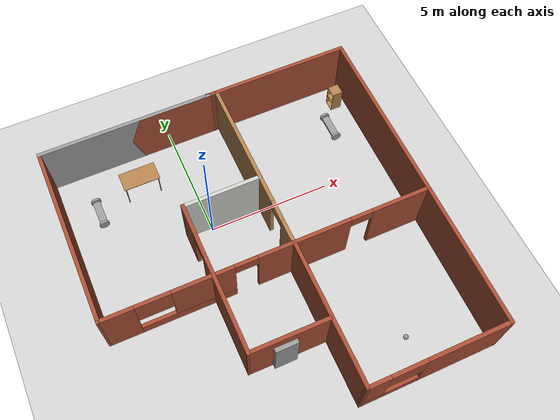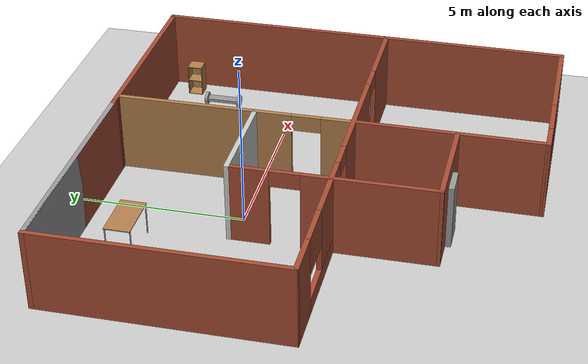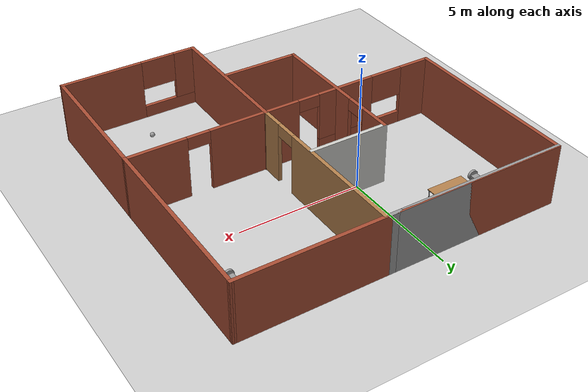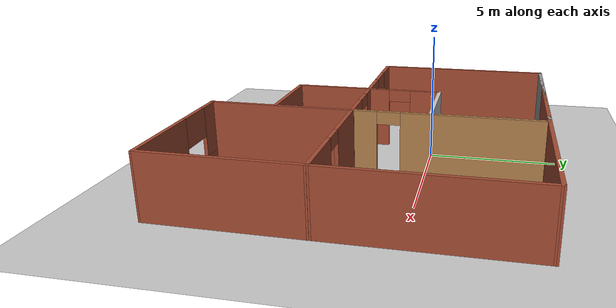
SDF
<sdf version="1.6">
 <world name="default">
  <plugin name="hello" filename="libhello.so"/>
  <light name="sun" type="directional">
   <pose>0 0 10 0 -0 0</pose>
   <diffuse>0.8 0.8 0.8 1</diffuse>
   <specular>0.2 0.2 0.2 1</specular>
   <attenuation>
    <range>1000</range>
    <constant>0.9</constant>
    <linear>0.01</linear>
    <quadratic>0.001</quadratic>
   </attenuation>
   <direction>-0.5 0.1 -0.9</direction>
  </light>
  <model name="ground_plane">
   <static>1</static>
   <link name="link">
    <collision name="collision">
     <geometry><plane><normal>0 0 1</normal><size>100 100</size></plane></geometry>
     <surface><friction><ode><mu>100</mu><mu2>50</mu2></ode></friction></surface>
    </collision>
    <visual name="visual">
     <cast_shadows>0</cast_shadows>
     <geometry><plane><normal>0 0 1</normal><size>100 100</size></plane></geometry>
     <material>
      <script><uri>file://media/materials/scripts/gazebo.material</uri><name>Gazebo/Grey</name></script>
     </material>
    </visual>
   </link>
  </model>
  <gravity>0 0 -9.8</gravity>
  <magnetic_field>6e-06 2.3e-05 -4.2e-05</magnetic_field>
  <atmosphere type="adiabatic"/>
  <physics name="default_physics" default="0" type="ode">
   <max_step_size>0.001</max_step_size>
   <real_time_factor>1</real_time_factor>
   <real_time_update_rate>1000</real_time_update_rate>
  </physics>
  <scene><ambient>0.4 0.4 0.4 1</ambient><background>0.7 0.7 0.7 1</background><shadows>1</shadows></scene>
  <spherical_coordinates>
   <surface_model>EARTH_WGS84</surface_model>
   <latitude_deg>0</latitude_deg>
   <longitude_deg>0</longitude_deg>
   <elevation>0</elevation>
   <heading_deg>0</heading_deg>
  </spherical_coordinates>
  <model name="Building">
   <pose>1.27364 -2.0395 0 0 -0 0</pose>
   <link name="Door_0">
    <collision name="Door_0_Collision">
     <geometry><box><size>0.9 0.17 2</size></box></geometry>
     <pose>0 0 1 0 -0 0</pose>
    </collision>
    <visual name="Door_0_Visual">
     <pose>0 0 1 0 -0 0</pose>
     <geometry><box><size>0.9 0.17 2</size></box></geometry>
     <material>
      <script><uri>file://media/materials/scripts/gazebo.material</uri><name>Gazebo/Grey</name></script>
     </material>
    </visual>
    <pose>-0.878034 -4.05359 0 0 -0 0</pose>
   </link>
   <link name="Wall_27">
    <collision name="Wall_27_Collision">
     <geometry><box><size>7 0.15 2.5</size></box></geometry>
     <pose>0 0 1.25 0 -0 0</pose>
    </collision>
    <visual name="Wall_27_Visual">
     <pose>0 0 1.25 0 -0 0</pose>
     <geometry><box><size>7 0.15 2.5</size></box></geometry>
     <material>
      <script><uri>file://media/materials/scripts/gazebo.material</uri><name>Gazebo/Grey</name></script>
      <ambient>1 1 1 1</ambient>
     </material>
     <meta><layer>0</layer></meta>
    </visual>
    <pose>-3.09504 6.54451 0 0 -0 0</pose>
   </link>
   <link name="Wall_28">
    <collision name="Wall_28_Collision">
     <geometry><box><size>0.5 0.15 2.5</size></box></geometry>
     <pose>0 0 1.25 0 -0 0</pose>
    </collision>
    <visual name="Wall_28_Visual">
     <pose>0 0 1.25 0 -0 0</pose>
     <geometry><box><size>0.5 0.15 2.5</size></box></geometry>
     <material>
      <script><uri>file://media/materials/scripts/gazebo.material</uri><name>Gazebo/Grey</name></script>
      <ambient>1 1 1 1</ambient>
     </material>
     <meta><layer>0</layer></meta>
    </visual>
    <pose>0.504955 6.54451 0 0 -0 0</pose>
   </link>
   <link name="Wall_29">
    <collision name="Wall_29_Collision">
     <geometry><box><size>7.35 0.15 2.5</size></box></geometry>
     <pose>0 0 1.25 0 -0 0</pose>
    </collision>
    <visual name="Wall_29_Visual">
     <pose>0 0 1.25 0 -0 0</pose>
     <geometry><box><size>7.35 0.15 2.5</size></box></geometry>
     <material>
      <script><uri>file://media/materials/scripts/gazebo.material</uri><name>Gazebo/Bricks</name></script>
      <ambient>0.435294 0.796078 0.67451 1</ambient>
     </material>
     <meta><layer>0</layer></meta>
    </visual>
    <pose>-2.92005 6.54451 0 0 -0 3.14159</pose>
   </link>
   <link name="Wall_30">
    <collision name="Wall_30_Collision">
     <geometry><box><size>7.5 0.15 2.5</size></box></geometry>
     <pose>0 0 1.25 0 -0 0</pose>
    </collision>
    <visual name="Wall_30_Visual">
     <pose>0 0 1.25 0 -0 0</pose>
     <geometry><box><size>7.5 0.15 2.5</size></box></geometry>
     <material>
      <script><uri>file://media/materials/scripts/gazebo.material</uri><name>Gazebo/Bricks</name></script>
      <ambient>0.996078 0.47451 0.0196078 1</ambient>
     </material>
     <meta><layer>0</layer></meta>
    </visual>
    <pose>-6.52004 2.86951 0 0 0 -1.5708</pose>
   </link>
   <link name="Wall_31">
    <pose>-0.0156 -0.807041 0 0 0 -0.000239</pose>
    <visual name="Wall_31_Visual_0">
     <pose>-5.89513 0 1.25 0 -0 0</pose>
     <geometry><box><size>1.36863 0.15 2.5</size></box></geometry>
     <material>
      <script><uri>file://media/materials/scripts/gazebo.material</uri><name>Gazebo/Bricks</name></script>
      <ambient>0 0 1 1</ambient>
     </material>
     <meta><layer>0</layer></meta>
    </visual>
    <collision name="Wall_31_Collision_0">
     <geometry><box><size>1.36863 0.15 2.5</size></box></geometry>
     <pose>-5.89513 0 1.25 0 -0 0</pose>
    </collision>
    <visual name="Wall_31_Visual_1">
     <pose>1.36316 0 1.25 0 -0 0</pose>
     <geometry><box><size>3.74468 0.15 2.5</size></box></geometry>
     <material>
      <script><uri>file://media/materials/scripts/gazebo.material</uri><name>Gazebo/Bricks</name></script>
      <ambient>0 0 1 1</ambient>
     </material>
     <meta><layer>0</layer></meta>
    </visual>
    <collision name="Wall_31_Collision_1">
     <geometry><box><size>3.74468 0.15 2.5</size></box></geometry>
     <pose>1.36316 0 1.25 0 -0 0</pose>
    </collision>
    <visual name="Wall_31_Visual_2">
     <pose>5.35747 0 1.25 0 -0 0</pose>
     <geometry><box><size>2.44394 0.15 2.5</size></box></geometry>
     <material>
      <script><uri>file://media/materials/scripts/gazebo.material</uri><name>Gazebo/Bricks</name></script>
      <ambient>0 0 1 1</ambient>
     </material>
     <meta><layer>0</layer></meta>
    </visual>
    <collision name="Wall_31_Collision_2">
     <geometry><box><size>2.44394 0.15 2.5</size></box></geometry>
     <pose>5.35747 0 1.25 0 -0 0</pose>
    </collision>
    <visual name="Wall_31_Visual_3">
     <pose>-3.31 0 0.25 0 -0 0</pose>
     <geometry><box><size>3.80163 0.15 0.5</size></box></geometry>
     <material>
      <script><uri>file://media/materials/scripts/gazebo.material</uri><name>Gazebo/Bricks</name></script>
      <ambient>0 0 1 1</ambient>
     </material>
     <meta><layer>0</layer></meta>
    </visual>
    <collision name="Wall_31_Collision_3">
     <geometry><box><size>3.80163 0.15 0.5</size></box></geometry>
     <pose>-3.31 0 0.25 0 -0 0</pose>
    </collision>
    <visual name="Wall_31_Visual_4">
     <pose>-2.62505 0 1.5 0 -0 0</pose>
     <geometry><box><size>2.43174 0.15 2</size></box></geometry>
     <material>
      <script><uri>file://media/materials/scripts/gazebo.material</uri><name>Gazebo/Bricks</name></script>
      <ambient>0 0 1 1</ambient>
     </material>
     <meta><layer>0</layer></meta>
    </visual>
    <collision name="Wall_31_Collision_4">
     <geometry><box><size>2.43174 0.15 2</size></box></geometry>
     <pose>-2.62505 0 1.5 0 -0 0</pose>
    </collision>
    <visual name="Wall_31_Visual_5">
     <pose>-4.52587 0 1.9 0 -0 0</pose>
     <geometry><box><size>1.36989 0.15 1.2</size></box></geometry>
     <material>
      <script><uri>file://media/materials/scripts/gazebo.material</uri><name>Gazebo/Bricks</name></script>
      <ambient>0 0 1 1</ambient>
     </material>
     <meta><layer>0</layer></meta>
    </visual>
    <collision name="Wall_31_Collision_5">
     <geometry><box><size>1.36989 0.15 1.2</size></box></geometry>
     <pose>-4.52587 0 1.9 0 -0 0</pose>
    </collision>
    <visual name="Wall_31_Visual_6">
     <pose>3.6855 0 2.25 0 -0 0</pose>
     <geometry><box><size>0.9 0.15 0.5</size></box></geometry>
     <material>
      <script><uri>file://media/materials/scripts/gazebo.material</uri><name>Gazebo/Bricks</name></script>
      <ambient>0 0 1 1</ambient>
     </material>
     <meta><layer>0</layer></meta>
    </visual>
    <collision name="Wall_31_Collision_6">
     <geometry><box><size>0.9 0.15 0.5</size></box></geometry>
     <pose>3.6855 0 2.25 0 -0 0</pose>
    </collision>
    <visual name="Wall_31_Visual_7">
     <pose>-0.95918 0 2.25 0 -0 0</pose>
     <geometry><box><size>0.9 0.15 0.5</size></box></geometry>
     <material>
      <script><uri>file://media/materials/scripts/gazebo.material</uri><name>Gazebo/Bricks</name></script>
      <ambient>0 0 1 1</ambient>
     </material>
     <meta><layer>0</layer></meta>
    </visual>
    <collision name="Wall_31_Collision_7">
     <geometry><box><size>0.9 0.15 0.5</size></box></geometry>
     <pose>-0.95918 0 2.25 0 -0 0</pose>
    </collision>
   </link>
   <link name="Wall_36">
    <collision name="Wall_36_Collision">
     <geometry><box><size>7.51446 0.15 2.5</size></box></geometry>
     <pose>0 0 1.25 0 -0 0</pose>
    </collision>
    <visual name="Wall_36_Visual">
     <pose>0 0 1.25 0 -0 0</pose>
     <geometry><box><size>7.51446 0.15 2.5</size></box></geometry>
     <material>
      <script><uri>file://media/materials/scripts/gazebo.material</uri><name>Gazebo/Bricks</name></script>
      <ambient>1 1 1 1</ambient>
     </material>
     <meta><layer>0</layer></meta>
    </visual>
    <pose>6.5043 2.8736 0 0 -0 1.5666</pose>
   </link>
   <link name="Wall_37">
    <collision name="Wall_37_Collision">
     <geometry><box><size>5.9898 0.15 2.5</size></box></geometry>
     <pose>0 0 1.25 0 -0 0</pose>
    </collision>
    <visual name="Wall_37_Visual">
     <pose>0 0 1.25 0 -0 0</pose>
     <geometry><box><size>5.9898 0.15 2.5</size></box></geometry>
     <material>
      <script><uri>file://media/materials/scripts/gazebo.material</uri><name>Gazebo/Bricks</name></script>
      <ambient>1 1 1 1</ambient>
     </material>
     <meta><layer>0</layer></meta>
    </visual>
    <pose>3.59985 6.55016 0 0 0 -3.13966</pose>
   </link>
   <link name="Wall_39">
    <pose>0.888656 2.90862 0 0 -0 1.57305</pose>
    <visual name="Wall_39_Visual_0">
     <pose>-3.19553 0 1.25 0 -0 0</pose>
     <geometry><box><size>0.919616 0.15 2.5</size></box></geometry>
     <material>
      <script><uri>file://media/materials/scripts/gazebo.material</uri><name>Gazebo/Wood</name></script>
      <ambient>1 1 1 1</ambient>
     </material>
     <meta><layer>0</layer></meta>
    </visual>
    <collision name="Wall_39_Collision_0">
     <geometry><box><size>0.919616 0.15 2.5</size></box></geometry>
     <pose>-3.19553 0 1.25 0 -0 0</pose>
    </collision>
    <visual name="Wall_39_Visual_1">
     <pose>0.909808 0 1.25 0 -0 0</pose>
     <geometry><box><size>5.49106 0.15 2.5</size></box></geometry>
     <material>
      <script><uri>file://media/materials/scripts/gazebo.material</uri><name>Gazebo/Wood</name></script>
      <ambient>1 1 1 1</ambient>
     </material>
     <meta><layer>0</layer></meta>
    </visual>
    <collision name="Wall_39_Collision_1">
     <geometry><box><size>5.49106 0.15 2.5</size></box></geometry>
     <pose>0.909808 0 1.25 0 -0 0</pose>
    </collision>
    <visual name="Wall_39_Visual_2">
     <pose>-2.28572 0 2.25 0 -0 0</pose>
     <geometry><box><size>0.9 0.15 0.5</size></box></geometry>
     <material>
      <script><uri>file://media/materials/scripts/gazebo.material</uri><name>Gazebo/Wood</name></script>
      <ambient>1 1 1 1</ambient>
     </material>
     <meta><layer>0</layer></meta>
    </visual>
    <collision name="Wall_39_Collision_2">
     <geometry><box><size>0.9 0.15 0.5</size></box></geometry>
     <pose>-2.28572 0 2.25 0 -0 0</pose>
    </collision>
   </link>
   <link name="Wall_43">
    <collision name="Wall_43_Collision">
     <geometry><box><size>5.89306 0.15 2.5</size></box></geometry>
     <pose>0 0 1.25 0 -0 0</pose>
    </collision>
    <visual name="Wall_43_Visual">
     <pose>0 0 1.25 0 -0 0</pose>
     <geometry><box><size>5.89306 0.15 2.5</size></box></geometry>
     <material>
      <script><uri>file://media/materials/scripts/gazebo.material</uri><name>Gazebo/Bricks</name></script>
      <ambient>1 1 1 1</ambient>
     </material>
     <meta><layer>0</layer></meta>
    </visual>
    <pose>6.46431 -3.68002 0 0 0 -1.57934</pose>
   </link>
   <link name="Wall_45">
    <pose>3.65788 -6.55354 0 0 0 -3.14084</pose>
    <visual name="Wall_45_Visual_0">
     <pose>-1.18565 0 1.25 0 -0 0</pose>
     <geometry><box><size>3.34247 0.15 2.5</size></box></geometry>
     <material>
      <script><uri>file://media/materials/scripts/gazebo.material</uri><name>Gazebo/Bricks</name></script>
      <ambient>0.996078 0.47451 0.0196078 1</ambient>
     </material>
     <meta><layer>0</layer></meta>
    </visual>
    <collision name="Wall_45_Collision_0">
     <geometry><box><size>3.34247 0.15 2.5</size></box></geometry>
     <pose>-1.18565 0 1.25 0 -0 0</pose>
    </collision>
    <visual name="Wall_45_Visual_1">
     <pose>1.67123 0 0.25 0 -0 0</pose>
     <geometry><box><size>2.3713 0.15 0.5</size></box></geometry>
     <material>
      <script><uri>file://media/materials/scripts/gazebo.material</uri><name>Gazebo/Bricks</name></script>
      <ambient>0.996078 0.47451 0.0196078 1</ambient>
     </material>
     <meta><layer>0</layer></meta>
    </visual>
    <collision name="Wall_45_Collision_1">
     <geometry><box><size>2.3713 0.15 0.5</size></box></geometry>
     <pose>1.67123 0 0.25 0 -0 0</pose>
    </collision>
    <visual name="Wall_45_Visual_2">
     <pose>2.37766 0 1.5 0 -0 0</pose>
     <geometry><box><size>0.958446 0.15 2</size></box></geometry>
     <material>
      <script><uri>file://media/materials/scripts/gazebo.material</uri><name>Gazebo/Bricks</name></script>
      <ambient>0.996078 0.47451 0.0196078 1</ambient>
     </material>
     <meta><layer>0</layer></meta>
    </visual>
    <collision name="Wall_45_Collision_2">
     <geometry><box><size>0.958446 0.15 2</size></box></geometry>
     <pose>2.37766 0 1.5 0 -0 0</pose>
    </collision>
    <visual name="Wall_45_Visual_3">
     <pose>1.19201 0 1.9 0 -0 0</pose>
     <geometry><box><size>1.41285 0.15 1.2</size></box></geometry>
     <material>
      <script><uri>file://media/materials/scripts/gazebo.material</uri><name>Gazebo/Bricks</name></script>
      <ambient>0.996078 0.47451 0.0196078 1</ambient>
     </material>
     <meta><layer>0</layer></meta>
    </visual>
    <collision name="Wall_45_Collision_3">
     <geometry><box><size>1.41285 0.15 1.2</size></box></geometry>
     <pose>1.19201 0 1.9 0 -0 0</pose>
    </collision>
   </link>
   <link name="Wall_46">
    <collision name="Wall_46_Collision">
     <geometry><box><size>5.91816 0.15 2.5</size></box></geometry>
     <pose>0 0 1.25 0 -0 0</pose>
    </collision>
    <visual name="Wall_46_Visual">
     <pose>0 0 1.25 0 -0 0</pose>
     <geometry><box><size>5.91816 0.15 2.5</size></box></geometry>
     <material>
      <script><uri>file://media/materials/scripts/gazebo.material</uri><name>Gazebo/Bricks</name></script>
      <ambient>1 1 1 1</ambient>
     </material>
     <meta><layer>0</layer></meta>
    </visual>
    <pose>0.894551 -3.67161 0 0 -0 1.56437</pose>
   </link>
   <link name="Wall_48">
    <collision name="Wall_48_Collision">
     <geometry><box><size>3.25 0.15 2.5</size></box></geometry>
     <pose>0 0 1.25 0 -0 0</pose>
    </collision>
    <visual name="Wall_48_Visual">
     <pose>0 0 1.25 0 -0 0</pose>
     <geometry><box><size>3.25 0.15 2.5</size></box></geometry>
     <material>
      <script><uri>file://media/materials/scripts/gazebo.material</uri><name>Gazebo/CeilingTiled</name></script>
      <ambient>0.435294 0.796078 0.67451 1</ambient>
     </material>
     <meta><layer>0</layer></meta>
    </visual>
    <pose>-0.694862 2.21167 0 0 -0 3.14159</pose>
   </link>
   <link name="Wall_49">
    <pose>-2.24486 -0.838328 0 0 0 -1.5708</pose>
    <visual name="Wall_49_Visual_0">
     <pose>-2.46999 0 1.25 0 -0 0</pose>
     <geometry><box><size>1.31002 0.15 2.5</size></box></geometry>
     <material>
      <script><uri>file://media/materials/scripts/gazebo.material</uri><name>Gazebo/Bricks</name></script>
      <ambient>1 1 1 1</ambient>
     </material>
     <meta><layer>0</layer></meta>
    </visual>
    <collision name="Wall_49_Collision_0">
     <geometry><box><size>1.31002 0.15 2.5</size></box></geometry>
     <pose>-2.46999 0 1.25 0 -0 0</pose>
    </collision>
    <visual name="Wall_49_Visual_1">
     <pose>1.10501 0 1.25 0 -0 0</pose>
     <geometry><box><size>4.03998 0.15 2.5</size></box></geometry>
     <material>
      <script><uri>file://media/materials/scripts/gazebo.material</uri><name>Gazebo/Bricks</name></script>
      <ambient>1 1 1 1</ambient>
     </material>
     <meta><layer>0</layer></meta>
    </visual>
    <collision name="Wall_49_Collision_1">
     <geometry><box><size>4.03998 0.15 2.5</size></box></geometry>
     <pose>1.10501 0 1.25 0 -0 0</pose>
    </collision>
    <visual name="Wall_49_Visual_2">
     <pose>-1.36498 0 2.25 0 -0 0</pose>
     <geometry><box><size>0.9 0.15 0.5</size></box></geometry>
     <material>
      <script><uri>file://media/materials/scripts/gazebo.material</uri><name>Gazebo/Bricks</name></script>
      <ambient>1 1 1 1</ambient>
     </material>
     <meta><layer>0</layer></meta>
    </visual>
    <collision name="Wall_49_Collision_2">
     <geometry><box><size>0.9 0.15 0.5</size></box></geometry>
     <pose>-1.36498 0 2.25 0 -0 0</pose>
    </collision>
   </link>
   <link name="Wall_50">
    <collision name="Wall_50_Collision">
     <geometry><box><size>3.1949 0.15 2.5</size></box></geometry>
     <pose>0 0 1.25 0 -0 0</pose>
    </collision>
    <visual name="Wall_50_Visual">
     <pose>0 0 1.25 0 -0 0</pose>
     <geometry><box><size>3.1949 0.15 2.5</size></box></geometry>
     <material>
      <script><uri>file://media/materials/scripts/gazebo.material</uri><name>Gazebo/Bricks</name></script>
      <ambient>0.996078 0.47451 0.0196078 1</ambient>
     </material>
     <meta><layer>0</layer></meta>
    </visual>
    <pose>-0.722682 -3.89854 0 0 0 -0.006711</pose>
   </link>
   <static>1</static>
  </model>
  <model name="robot">
   <link name="link_0">
    <pose>0 0 0.2 0 -0 0</pose>
    <inertial>
     <mass>1</mass>
     <inertia>
      <ixx>0.166667</ixx>
      <ixy>0</ixy>
      <ixz>0</ixz>
      <iyy>0.166667</iyy>
      <iyz>0</iyz>
      <izz>0.166667</izz>
     </inertia>
    </inertial>
    <visual name="visual">
     <geometry><box><size>0.3 1 0.1</size></box></geometry>
     <material>
      <lighting>1</lighting>
      <script><uri>file://media/materials/scripts/gazebo.material</uri><name>Gazebo/Grey</name></script>
      <shader type="pixel"><normal_map>__default__</normal_map></shader>
      <ambient>0.3 0.3 0.3 1</ambient>
      <diffuse>0.7 0.7 0.7 1</diffuse>
      <specular>0.01 0.01 0.01 1</specular>
      <emissive>0 0 0 1</emissive>
     </material>
    </visual>
    <collision name="collision">
     <geometry><box><size>0.3 1 0.1</size></box></geometry>
     <surface>
      <friction>
       <ode><mu>1</mu><mu2>1</mu2><fdir1>0 0 0</fdir1><slip1>0</slip1><slip2>0</slip2></ode>
       <torsional>
        <coefficient>1</coefficient>
        <patch_radius>0</patch_radius>
        <surface_radius>0</surface_radius>
        <use_patch_radius>1</use_patch_radius>
        <ode><slip>0</slip></ode>
       </torsional>
      </friction>
      <bounce><restitution_coefficient>0</restitution_coefficient><threshold>1e+06</threshold></bounce>
      <contact>
       <collide_without_contact>0</collide_without_contact>
       <collide_without_contact_bitmask>1</collide_without_contact_bitmask>
       <collide_bitmask>1</collide_bitmask>
       <ode>
        <soft_cfm>0</soft_cfm>
        <soft_erp>0.2</soft_erp>
        <kp>1e+13</kp>
        <kd>1</kd>
        <max_vel>0.01</max_vel>
        <min_depth>0</min_depth>
       </ode>
       <bullet>
        <split_impulse>1</split_impulse>
        <split_impulse_penetration_threshold>-0.01</split_impulse_penetration_threshold>
        <soft_cfm>0</soft_cfm>
        <soft_erp>0.2</soft_erp>
        <kp>1e+13</kp>
        <kd>1</kd>
       </bullet>
      </contact>
     </surface>
    </collision>
   </link>
   <link name="link_2">
    <pose>0 -0.550019 0.2 1.5707 -0 0</pose>
    <inertial>
     <mass>1</mass>
     <inertia><ixx>0.145833</ixx><ixy>0</ixy><ixz>0</ixz><iyy>0.145833</iyy><iyz>0</iyz><izz>0.125</izz></inertia>
     <pose>0 0 0.2 1.5707 -0 0</pose>
    </inertial>
    <visual name="visual">
     <geometry><cylinder><radius>0.2</radius><length>0.1</length></cylinder></geometry>
     <material>
      <lighting>1</lighting>
      <script><uri>file://media/materials/scripts/gazebo.material</uri><name>Gazebo/Grey</name></script>
      <shader type="pixel"><normal_map>__default__</normal_map></shader>
      <ambient>0.3 0.3 0.3 1</ambient>
      <diffuse>0.7 0.7 0.7 1</diffuse>
      <specular>0.01 0.01 0.01 1</specular>
      <emissive>0 0 0 1</emissive>
     </material>
    </visual>
    <collision name="collision">
     <geometry><cylinder><radius>0.2</radius><length>0.1</length></cylinder></geometry>
     <surface>
      <friction>
       <ode><mu>1</mu><mu2>1</mu2><fdir1>0 0 0</fdir1><slip1>0</slip1><slip2>0</slip2></ode>
       <torsional>
        <coefficient>1</coefficient>
        <patch_radius>0</patch_radius>
        <surface_radius>0</surface_radius>
        <use_patch_radius>1</use_patch_radius>
        <ode><slip>0</slip></ode>
       </torsional>
      </friction>
      <bounce><restitution_coefficient>0</restitution_coefficient><threshold>1e+06</threshold></bounce>
      <contact>
       <collide_without_contact>0</collide_without_contact>
       <collide_without_contact_bitmask>1</collide_without_contact_bitmask>
       <collide_bitmask>1</collide_bitmask>
       <ode>
        <soft_cfm>0</soft_cfm>
        <soft_erp>0.2</soft_erp>
        <kp>1e+13</kp>
        <kd>1</kd>
        <max_vel>0.01</max_vel>
        <min_depth>0</min_depth>
       </ode>
       <bullet>
        <split_impulse>1</split_impulse>
        <split_impulse_penetration_threshold>-0.01</split_impulse_penetration_threshold>
        <soft_cfm>0</soft_cfm>
        <soft_erp>0.2</soft_erp>
        <kp>1e+13</kp>
        <kd>1</kd>
       </bullet>
      </contact>
     </surface>
    </collision>
   </link>
   <link name="link_2_clone">
    <pose>0 0.550019 0.2 1.5707 -0 0</pose>
    <inertial>
     <mass>1</mass>
     <inertia><ixx>0.145833</ixx><ixy>0</ixy><ixz>0</ixz><iyy>0.145833</iyy><iyz>0</iyz><izz>0.125</izz></inertia>
     <pose>0 0 0.2 1.5707 -0 0</pose>
    </inertial>
    <visual name="visual">
     <geometry><cylinder><radius>0.2</radius><length>0.1</length></cylinder></geometry>
     <material>
      <lighting>1</lighting>
      <script><uri>file://media/materials/scripts/gazebo.material</uri><name>Gazebo/Grey</name></script>
      <shader type="pixel"><normal_map>__default__</normal_map></shader>
      <ambient>0.3 0.3 0.3 1</ambient>
      <diffuse>0.7 0.7 0.7 1</diffuse>
      <specular>0.01 0.01 0.01 1</specular>
      <emissive>0 0 0 1</emissive>
     </material>
    </visual>
    <collision name="collision">
     <geometry><cylinder><radius>0.2</radius><length>0.1</length></cylinder></geometry>
     <surface>
      <friction>
       <ode><mu>1</mu><mu2>1</mu2><fdir1>0 0 0</fdir1><slip1>0</slip1><slip2>0</slip2></ode>
       <torsional>
        <coefficient>1</coefficient>
        <patch_radius>0</patch_radius>
        <surface_radius>0</surface_radius>
        <use_patch_radius>1</use_patch_radius>
        <ode><slip>0</slip></ode>
       </torsional>
      </friction>
      <bounce><restitution_coefficient>0</restitution_coefficient><threshold>1e+06</threshold></bounce>
      <contact>
       <collide_without_contact>0</collide_without_contact>
       <collide_without_contact_bitmask>1</collide_without_contact_bitmask>
       <collide_bitmask>1</collide_bitmask>
       <ode>
        <soft_cfm>0</soft_cfm>
        <soft_erp>0.2</soft_erp>
        <kp>1e+13</kp>
        <kd>1</kd>
        <max_vel>0.01</max_vel>
        <min_depth>0</min_depth>
       </ode>
       <bullet>
        <split_impulse>1</split_impulse>
        <split_impulse_penetration_threshold>-0.01</split_impulse_penetration_threshold>
        <soft_cfm>0</soft_cfm>
        <soft_erp>0.2</soft_erp>
        <kp>1e+13</kp>
        <kd>1</kd>
       </bullet>
      </contact>
     </surface>
    </collision>
   </link>
   <joint name="link_0_JOINT_2" type="revolute">
    <parent>link_0</parent>
    <child>link_2</child>
    <axis>
     <xyz>0 0 1</xyz>
     <use_parent_model_frame>0</use_parent_model_frame>
     <limit>
      <lower>-1.79769e+308</lower>
      <upper>1.79769e+308</upper>
      <effort>-1</effort>
      <velocity>-1</velocity>
     </limit>
     <dynamics>
      <spring_reference>0</spring_reference>
      <spring_stiffness>0</spring_stiffness>
      <damping>0</damping>
     </dynamics>
    </axis>
    <physics>
     <ode><limit><cfm>0</cfm><erp>0.2</erp></limit><suspension><cfm>0</cfm><erp>0.2</erp></suspension></ode>
    </physics>
   </joint>
   <joint name="link_0_JOINT_3" type="revolute">
    <parent>link_0</parent>
    <child>link_2_clone</child>
    <axis>
     <xyz>0 0 1</xyz>
     <use_parent_model_frame>0</use_parent_model_frame>
     <limit>
      <lower>-1.79769e+308</lower>
      <upper>1.79769e+308</upper>
      <effort>-1</effort>
      <velocity>-1</velocity>
     </limit>
     <dynamics>
      <spring_reference>0</spring_reference>
      <spring_stiffness>0</spring_stiffness>
      <damping>0</damping>
     </dynamics>
    </axis>
    <physics>
     <ode><limit><cfm>0</cfm><erp>0.2</erp></limit><suspension><cfm>0</cfm><erp>0.2</erp></suspension></ode>
    </physics>
   </joint>
   <static>0</static>
   <pose>-3.89436 2.46549 2e-06 4e-06 -0 0</pose>
  </model>
  <model name="robot_0">
   <link name="link_0">
    <pose>0 0 0.2 0 -0 0</pose>
    <inertial>
     <mass>1</mass>
     <inertia>
      <ixx>0.166667</ixx>
      <ixy>0</ixy>
      <ixz>0</ixz>
      <iyy>0.166667</iyy>
      <iyz>0</iyz>
      <izz>0.166667</izz>
     </inertia>
    </inertial>
    <visual name="visual">
     <geometry><box><size>0.3 1 0.1</size></box></geometry>
     <material>
      <lighting>1</lighting>
      <script><uri>file://media/materials/scripts/gazebo.material</uri><name>Gazebo/Grey</name></script>
      <shader type="pixel"><normal_map>__default__</normal_map></shader>
      <ambient>0.3 0.3 0.3 1</ambient>
      <diffuse>0.7 0.7 0.7 1</diffuse>
      <specular>0.01 0.01 0.01 1</specular>
      <emissive>0 0 0 1</emissive>
     </material>
    </visual>
    <collision name="collision">
     <geometry><box><size>0.3 1 0.1</size></box></geometry>
     <surface>
      <friction>
       <ode><mu>1</mu><mu2>1</mu2><fdir1>0 0 0</fdir1><slip1>0</slip1><slip2>0</slip2></ode>
       <torsional>
        <coefficient>1</coefficient>
        <patch_radius>0</patch_radius>
        <surface_radius>0</surface_radius>
        <use_patch_radius>1</use_patch_radius>
        <ode><slip>0</slip></ode>
       </torsional>
      </friction>
      <bounce><restitution_coefficient>0</restitution_coefficient><threshold>1e+06</threshold></bounce>
      <contact>
       <collide_without_contact>0</collide_without_contact>
       <collide_without_contact_bitmask>1</collide_without_contact_bitmask>
       <collide_bitmask>1</collide_bitmask>
       <ode>
        <soft_cfm>0</soft_cfm>
        <soft_erp>0.2</soft_erp>
        <kp>1e+13</kp>
        <kd>1</kd>
        <max_vel>0.01</max_vel>
        <min_depth>0</min_depth>
       </ode>
       <bullet>
        <split_impulse>1</split_impulse>
        <split_impulse_penetration_threshold>-0.01</split_impulse_penetration_threshold>
        <soft_cfm>0</soft_cfm>
        <soft_erp>0.2</soft_erp>
        <kp>1e+13</kp>
        <kd>1</kd>
       </bullet>
      </contact>
     </surface>
    </collision>
   </link>
   <link name="link_2">
    <pose>0 -0.550019 0.2 1.5707 -0 0</pose>
    <inertial>
     <mass>1</mass>
     <inertia><ixx>0.145833</ixx><ixy>0</ixy><ixz>0</ixz><iyy>0.145833</iyy><iyz>0</iyz><izz>0.125</izz></inertia>
     <pose>0 0 0.2 1.5707 -0 0</pose>
    </inertial>
    <visual name="visual">
     <geometry><cylinder><radius>0.2</radius><length>0.1</length></cylinder></geometry>
     <material>
      <lighting>1</lighting>
      <script><uri>file://media/materials/scripts/gazebo.material</uri><name>Gazebo/Grey</name></script>
      <shader type="pixel"><normal_map>__default__</normal_map></shader>
      <ambient>0.3 0.3 0.3 1</ambient>
      <diffuse>0.7 0.7 0.7 1</diffuse>
      <specular>0.01 0.01 0.01 1</specular>
      <emissive>0 0 0 1</emissive>
     </material>
    </visual>
    <collision name="collision">
     <geometry><cylinder><radius>0.2</radius><length>0.1</length></cylinder></geometry>
     <surface>
      <friction>
       <ode><mu>1</mu><mu2>1</mu2><fdir1>0 0 0</fdir1><slip1>0</slip1><slip2>0</slip2></ode>
       <torsional>
        <coefficient>1</coefficient>
        <patch_radius>0</patch_radius>
        <surface_radius>0</surface_radius>
        <use_patch_radius>1</use_patch_radius>
        <ode><slip>0</slip></ode>
       </torsional>
      </friction>
      <bounce><restitution_coefficient>0</restitution_coefficient><threshold>1e+06</threshold></bounce>
      <contact>
       <collide_without_contact>0</collide_without_contact>
       <collide_without_contact_bitmask>1</collide_without_contact_bitmask>
       <collide_bitmask>1</collide_bitmask>
       <ode>
        <soft_cfm>0</soft_cfm>
        <soft_erp>0.2</soft_erp>
        <kp>1e+13</kp>
        <kd>1</kd>
        <max_vel>0.01</max_vel>
        <min_depth>0</min_depth>
       </ode>
       <bullet>
        <split_impulse>1</split_impulse>
        <split_impulse_penetration_threshold>-0.01</split_impulse_penetration_threshold>
        <soft_cfm>0</soft_cfm>
        <soft_erp>0.2</soft_erp>
        <kp>1e+13</kp>
        <kd>1</kd>
       </bullet>
      </contact>
     </surface>
    </collision>
   </link>
   <link name="link_2_clone">
    <pose>0 0.550019 0.2 1.5707 -0 0</pose>
    <inertial>
     <mass>1</mass>
     <inertia><ixx>0.145833</ixx><ixy>0</ixy><ixz>0</ixz><iyy>0.145833</iyy><iyz>0</iyz><izz>0.125</izz></inertia>
     <pose>0 0 0.2 1.5707 -0 0</pose>
    </inertial>
    <visual name="visual">
     <geometry><cylinder><radius>0.2</radius><length>0.1</length></cylinder></geometry>
     <material>
      <lighting>1</lighting>
      <script><uri>file://media/materials/scripts/gazebo.material</uri><name>Gazebo/Grey</name></script>
      <shader type="pixel"><normal_map>__default__</normal_map></shader>
      <ambient>0.3 0.3 0.3 1</ambient>
      <diffuse>0.7 0.7 0.7 1</diffuse>
      <specular>0.01 0.01 0.01 1</specular>
      <emissive>0 0 0 1</emissive>
     </material>
    </visual>
    <collision name="collision">
     <geometry><cylinder><radius>0.2</radius><length>0.1</length></cylinder></geometry>
     <surface>
      <friction>
       <ode><mu>1</mu><mu2>1</mu2><fdir1>0 0 0</fdir1><slip1>0</slip1><slip2>0</slip2></ode>
       <torsional>
        <coefficient>1</coefficient>
        <patch_radius>0</patch_radius>
        <surface_radius>0</surface_radius>
        <use_patch_radius>1</use_patch_radius>
        <ode><slip>0</slip></ode>
       </torsional>
      </friction>
      <bounce><restitution_coefficient>0</restitution_coefficient><threshold>1e+06</threshold></bounce>
      <contact>
       <collide_without_contact>0</collide_without_contact>
       <collide_without_contact_bitmask>1</collide_without_contact_bitmask>
       <collide_bitmask>1</collide_bitmask>
       <ode>
        <soft_cfm>0</soft_cfm>
        <soft_erp>0.2</soft_erp>
        <kp>1e+13</kp>
        <kd>1</kd>
        <max_vel>0.01</max_vel>
        <min_depth>0</min_depth>
       </ode>
       <bullet>
        <split_impulse>1</split_impulse>
        <split_impulse_penetration_threshold>-0.01</split_impulse_penetration_threshold>
        <soft_cfm>0</soft_cfm>
        <soft_erp>0.2</soft_erp>
        <kp>1e+13</kp>
        <kd>1</kd>
       </bullet>
      </contact>
     </surface>
    </collision>
   </link>
   <joint name="link_0_JOINT_2" type="revolute">
    <parent>link_0</parent>
    <child>link_2</child>
    <axis>
     <xyz>0 0 1</xyz>
     <use_parent_model_frame>0</use_parent_model_frame>
     <limit>
      <lower>-1.79769e+308</lower>
      <upper>1.79769e+308</upper>
      <effort>-1</effort>
      <velocity>-1</velocity>
     </limit>
     <dynamics>
      <spring_reference>0</spring_reference>
      <spring_stiffness>0</spring_stiffness>
      <damping>0</damping>
     </dynamics>
    </axis>
    <physics>
     <ode><limit><cfm>0</cfm><erp>0.2</erp></limit><suspension><cfm>0</cfm><erp>0.2</erp></suspension></ode>
    </physics>
   </joint>
   <joint name="link_0_JOINT_3" type="revolute">
    <parent>link_0</parent>
    <child>link_2_clone</child>
    <axis>
     <xyz>0 0 1</xyz>
     <use_parent_model_frame>0</use_parent_model_frame>
     <limit>
      <lower>-1.79769e+308</lower>
      <upper>1.79769e+308</upper>
      <effort>-1</effort>
      <velocity>-1</velocity>
     </limit>
     <dynamics>
      <spring_reference>0</spring_reference>
      <spring_stiffness>0</spring_stiffness>
      <damping>0</damping>
     </dynamics>
    </axis>
    <physics>
     <ode><limit><cfm>0</cfm><erp>0.2</erp></limit><suspension><cfm>0</cfm><erp>0.2</erp></suspension></ode>
    </physics>
   </joint>
   <static>0</static>
   <pose>6.49335 2.46994 5e-06 0 -0 0</pose>
  </model>
  <model name="cabinet">
   <static>1</static>
   <link name="cabinet_bottom_plate">
    <inertial>
     <pose>0 0 -1 0 -0 0</pose>
     <inertia><ixx>2.05</ixx><ixy>0</ixy><ixz>0</ixz><iyy>2.05</iyy><iyz>0</iyz><izz>2.05</izz></inertia>
     <mass>25</mass>
    </inertial>
    <collision name="cabinet_bottom_plate_geom">
     <pose>0 0 0.01 0 -0 0</pose>
     <geometry><box><size>0.45 0.45 0.02</size></box></geometry>
    </collision>
    <visual name="cabinet_bottom_plate_geom_visual">
     <pose>0 0 0.01 0 -0 0</pose>
     <geometry><box><size>0.45 0.45 0.02</size></box></geometry>
     <material>
      <script><uri>file://media/materials/scripts/gazebo.material</uri><name>Gazebo/Wood</name></script>
     </material>
    </visual>
    <collision name="cabinet_bottom_plate_geom_cabinet_back_plate">
     <pose>0.235 0 0.51 0 -0 0</pose>
     <geometry><box><size>0.02 0.45 1.02</size></box></geometry>
    </collision>
    <visual name="cabinet_bottom_plate_geom_cabinet_back_plate_visual">
     <pose>0.235 0 0.51 0 -0 0</pose>
     <geometry><box><size>0.02 0.45 1.02</size></box></geometry>
     <material>
      <script><uri>file://media/materials/scripts/gazebo.material</uri><name>Gazebo/Wood</name></script>
     </material>
    </visual>
    <collision name="cabinet_bottom_plate_geom_cabinet_left_plate">
     <pose>0 0.235 0.51 0 -0 0</pose>
     <geometry><box><size>0.45 0.02 1.02</size></box></geometry>
    </collision>
    <visual name="cabinet_bottom_plate_geom_cabinet_left_plate_visual">
     <pose>0 0.235 0.51 0 -0 0</pose>
     <geometry><box><size>0.45 0.02 1.02</size></box></geometry>
     <material>
      <script><uri>file://media/materials/scripts/gazebo.material</uri><name>Gazebo/Wood</name></script>
     </material>
    </visual>
    <collision name="cabinet_bottom_plate_geom_cabinet_middle_plate">
     <pose>0 0 0.51 0 -0 0</pose>
     <geometry><box><size>0.45 0.45 0.02</size></box></geometry>
    </collision>
    <visual name="cabinet_bottom_plate_geom_cabinet_middle_plate_visual">
     <pose>0 0 0.51 0 -0 0</pose>
     <geometry><box><size>0.45 0.45 0.02</size></box></geometry>
     <material>
      <script><uri>file://media/materials/scripts/gazebo.material</uri><name>Gazebo/Wood</name></script>
     </material>
    </visual>
    <collision name="cabinet_bottom_plate_geom_cabinet_right_plate">
     <pose>0 -0.235 0.51 0 -0 0</pose>
     <geometry><box><size>0.45 0.02 1.02</size></box></geometry>
    </collision>
    <visual name="cabinet_bottom_plate_geom_cabinet_right_plate_visual">
     <pose>0 -0.235 0.51 0 -0 0</pose>
     <geometry><box><size>0.45 0.02 1.02</size></box></geometry>
     <material>
      <script><uri>file://media/materials/scripts/gazebo.material</uri><name>Gazebo/Wood</name></script>
     </material>
    </visual>
    <collision name="cabinet_bottom_plate_geom_cabinet_top_plate">
     <pose>0 0 1.01 0 -0 0</pose>
     <geometry><box><size>0.45 0.45 0.02</size></box></geometry>
    </collision>
    <visual name="cabinet_bottom_plate_geom_cabinet_top_plate_visual">
     <pose>0 0 1.01 0 -0 0</pose>
     <geometry><box><size>0.45 0.45 0.02</size></box></geometry>
     <material>
      <script><uri>file://media/materials/scripts/gazebo.material</uri><name>Gazebo/Wood</name></script>
     </material>
    </visual>
   </link>
   <pose>7.21689 3.60068 0 0 -0 0</pose>
  </model>
  <model name="table">
   <static>1</static>
   <link name="link">
    <collision name="surface">
     <pose>0 0 1 0 -0 0</pose>
     <geometry><box><size>1.5 0.8 0.03</size></box></geometry>
     <surface><friction><ode><mu>0.6</mu><mu2>0.6</mu2></ode></friction></surface>
    </collision>
    <visual name="visual1">
     <pose>0 0 1 0 -0 0</pose>
     <geometry><box><size>1.5 0.8 0.03</size></box></geometry>
     <material>
      <script><uri>file://media/materials/scripts/gazebo.material</uri><name>Gazebo/Wood</name></script>
     </material>
    </visual>
    <collision name="front_left_leg">
     <pose>0.68 0.38 0.5 0 -0 0</pose>
     <geometry><cylinder><radius>0.02</radius><length>1</length></cylinder></geometry>
    </collision>
    <visual name="front_left_leg">
     <pose>0.68 0.38 0.5 0 -0 0</pose>
     <geometry><cylinder><radius>0.02</radius><length>1</length></cylinder></geometry>
     <material>
      <script><uri>file://media/materials/scripts/gazebo.material</uri><name>Gazebo/Grey</name></script>
     </material>
    </visual>
    <collision name="front_right_leg">
     <pose>0.68 -0.38 0.5 0 -0 0</pose>
     <geometry><cylinder><radius>0.02</radius><length>1</length></cylinder></geometry>
    </collision>
    <visual name="front_right_leg">
     <pose>0.68 -0.38 0.5 0 -0 0</pose>
     <geometry><cylinder><radius>0.02</radius><length>1</length></cylinder></geometry>
     <material>
      <script><uri>file://media/materials/scripts/gazebo.material</uri><name>Gazebo/Grey</name></script>
     </material>
    </visual>
    <collision name="back_right_leg">
     <pose>-0.68 -0.38 0.5 0 -0 0</pose>
     <geometry><cylinder><radius>0.02</radius><length>1</length></cylinder></geometry>
    </collision>
    <visual name="back_right_leg">
     <pose>-0.68 -0.38 0.5 0 -0 0</pose>
     <geometry><cylinder><radius>0.02</radius><length>1</length></cylinder></geometry>
     <material>
      <script><uri>file://media/materials/scripts/gazebo.material</uri><name>Gazebo/Grey</name></script>
     </material>
    </visual>
    <collision name="back_left_leg">
     <pose>-0.68 0.38 0.5 0 -0 0</pose>
     <geometry><cylinder><radius>0.02</radius><length>1</length></cylinder></geometry>
    </collision>
    <visual name="back_left_leg">
     <pose>-0.68 0.38 0.5 0 -0 0</pose>
     <geometry><cylinder><radius>0.02</radius><length>1</length></cylinder></geometry>
     <material>
      <script><uri>file://media/materials/scripts/gazebo.material</uri><name>Gazebo/Grey</name></script>
     </material>
    </visual>
   </link>
   <pose>-1.9363 2.95208 0 0 -0 0</pose>
  </model>
  <audio><device>default</device></audio>
  <model name="gpokhark">
   <link name="link_0">
    <inertial>
     <mass>1</mass>
     <inertia><ixx>0.1</ixx><ixy>0</ixy><ixz>0</ixz><iyy>0.1</iyy><iyz>0</iyz><izz>0.1</izz></inertia>
    </inertial>
    <visual name="visual">
     <geometry><sphere><radius>0.1</radius></sphere></geometry>
     <material>
      <lighting>1</lighting>
      <script><uri>file://media/materials/scripts/gazebo.material</uri><name>Gazebo/Grey</name></script>
      <shader type="vertex"><normal_map>__default__</normal_map></shader>
      <ambient>1 1 1 1</ambient>
      <diffuse>1 1 1 1</diffuse>
      <specular>1 1 1 1</specular>
      <emissive>1 1 1 1</emissive>
     </material>
    </visual>
    <collision name="collision">
     <geometry><sphere><radius>0.1</radius></sphere></geometry>
     <surface>
      <friction>
       <ode><mu>1</mu><mu2>1</mu2><fdir1>0 0 0</fdir1><slip1>0</slip1><slip2>0</slip2></ode>
       <torsional>
        <coefficient>1</coefficient>
        <patch_radius>0</patch_radius>
        <surface_radius>0</surface_radius>
        <use_patch_radius>1</use_patch_radius>
        <ode><slip>0</slip></ode>
       </torsional>
      </friction>
      <bounce><restitution_coefficient>0</restitution_coefficient><threshold>1e+06</threshold></bounce>
      <contact>
       <collide_without_contact>0</collide_without_contact>
       <collide_without_contact_bitmask>1</collide_without_contact_bitmask>
       <collide_bitmask>1</collide_bitmask>
       <ode>
        <soft_cfm>0</soft_cfm>
        <soft_erp>0.2</soft_erp>
        <kp>1e+13</kp>
        <kd>1</kd>
        <max_vel>0.01</max_vel>
        <min_depth>0</min_depth>
       </ode>
       <bullet>
        <split_impulse>1</split_impulse>
        <split_impulse_penetration_threshold>-0.01</split_impulse_penetration_threshold>
        <soft_cfm>0</soft_cfm>
        <soft_erp>0.2</soft_erp>
        <kp>1e+13</kp>
        <kd>1</kd>
       </bullet>
      </contact>
     </surface>
    </collision>
   </link>
   <static>0</static>
   <pose>4.88816 -7.08998 0.1 0 -0 0</pose>
  </model>
 </world>
</sdf>
